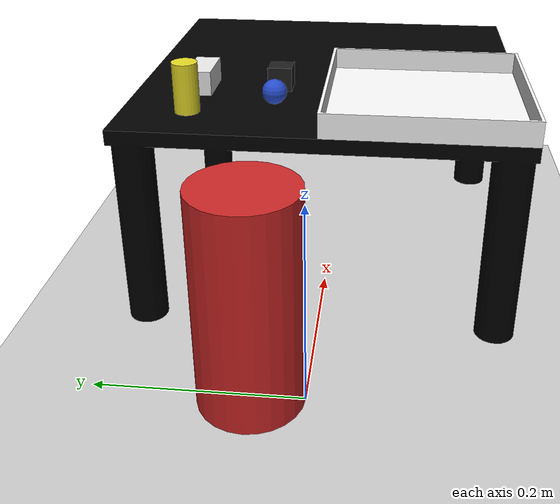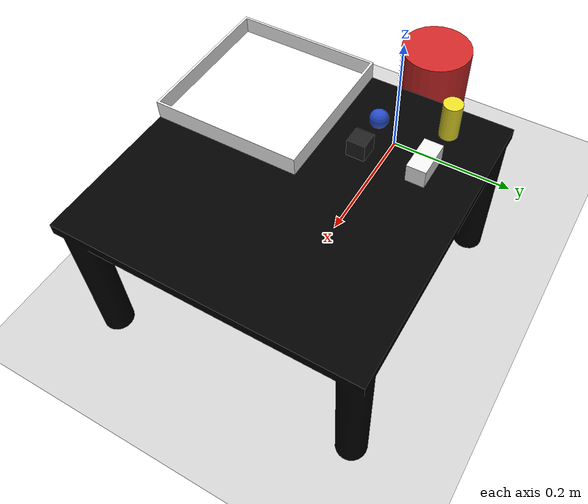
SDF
<sdf version="1.7">
 <world name="default">
  <light name="sun" type="directional">
   <pose>0 0 10 0 -0 0</pose>
   <diffuse>0.8 0.8 0.8 1</diffuse>
   <specular>0.2 0.2 0.2 1</specular>
   <attenuation>
    <range>1000</range>
    <constant>0.9</constant>
    <linear>0.01</linear>
    <quadratic>0.001</quadratic>
   </attenuation>
   <direction>-0.5 0.1 -0.9</direction>
   <spot><inner_angle>0</inner_angle><outer_angle>0</outer_angle><falloff>0</falloff></spot>
  </light>
  <model name="ground_plane">
   <static>1</static>
   <link name="link">
    <collision name="collision">
     <geometry><plane><normal>0 0 1</normal><size>100 100</size></plane></geometry>
     <surface><friction><ode><mu>100</mu><mu2>50</mu2></ode></friction></surface>
    </collision>
    <visual name="visual">
     <cast_shadows>0</cast_shadows>
     <geometry><plane><normal>0 0 1</normal><size>100 100</size></plane></geometry>
     <material>
      <script><uri>file://media/materials/scripts/gazebo.material</uri><name>Gazebo/Grey</name></script>
     </material>
    </visual>
   </link>
  </model>
  <gravity>0 0 -9.8</gravity>
  <magnetic_field>6e-06 2.3e-05 -4.2e-05</magnetic_field>
  <atmosphere type="adiabatic"/>
  <physics type="ode">
   <max_step_size>0.001</max_step_size>
   <real_time_factor>1</real_time_factor>
   <real_time_update_rate>1000</real_time_update_rate>
  </physics>
  <scene><ambient>0.4 0.4 0.4 1</ambient><background>0.7 0.7 0.7 1</background><shadows>1</shadows></scene>
  <spherical_coordinates>
   <surface_model>EARTH_WGS84</surface_model>
   <latitude_deg>0</latitude_deg>
   <longitude_deg>0</longitude_deg>
   <elevation>0</elevation>
   <heading_deg>0</heading_deg>
  </spherical_coordinates>
  <model name="orange_0">
   <link name="link">
    <inertial>
     <mass>0.0565</mass>
     <inertia>
      <ixx>2.35417e-05</ixx>
      <ixy>0</ixy>
      <ixz>0</ixz>
      <iyy>2.35417e-05</iyy>
      <iyz>0</iyz>
      <izz>2.35417e-05</izz>
     </inertia>
    </inertial>
    <collision name="collision">
     <pose>0 0.005 0 0 -0 0</pose>
     <geometry><box><size>0.2 0.01 0.2</size></box></geometry>
     <surface>
      <contact>
       <poissons_ratio>0.347</poissons_ratio>
       <elastic_modulus>8.8e+09</elastic_modulus>
       <ode><kp>100000</kp><kd>1</kd><max_vel>1</max_vel><min_depth>0.001</min_depth></ode>
      </contact>
      <friction>
       <torsional>
        <coefficient>1</coefficient>
        <use_patch_radius>0</use_patch_radius>
        <surface_radius>0.05</surface_radius>
       </torsional>
      </friction>
     </surface>
    </collision>
    <visual name="visual"><geometry><mesh><uri>model://changhei/meshes/1.dae</uri></mesh></geometry></visual>
   </link>
   <static>1</static>
   <pose>0.2 -0.1 0.215 1.5708 -0 0</pose>
  </model>
  <model name="unit_sphere_0.025">
   <link name="link">
    <inertial>
     <mass>8e-05</mass>
     <inertia>
      <ixx>0.0219651</ixx>
      <ixy>0</ixy>
      <ixz>0</ixz>
      <iyy>0.0219651</iyy>
      <iyz>0</iyz>
      <izz>0.0219651</izz>
     </inertia>
    </inertial>
    <visual name="visual">
     <geometry><sphere><radius>0.0125</radius></sphere></geometry>
     <material>
      <script><name>Gazebo/Blue</name><uri>file://media/materials/scripts/gazebo.material</uri></script>
      <shader type="pixel"><normal_map>__default__</normal_map></shader>
      <ambient>0 0 1 1</ambient>
      <diffuse>0 0 1 1</diffuse>
      <specular>0 0 1 1</specular>
      <emissive>0 0 0 1</emissive>
     </material>
    </visual>
    <collision name="collision">
     <geometry><box><size>0.025 0.025 0.025</size></box></geometry>
     <surface>
      <friction>
       <ode><mu>1</mu><mu2>1</mu2><fdir1>0 0 0</fdir1><slip1>0</slip1><slip2>0</slip2></ode>
       <torsional>
        <coefficient>1</coefficient>
        <patch_radius>0</patch_radius>
        <surface_radius>0</surface_radius>
        <use_patch_radius>1</use_patch_radius>
        <ode><slip>0</slip></ode>
       </torsional>
      </friction>
      <bounce><restitution_coefficient>0</restitution_coefficient><threshold>1e+06</threshold></bounce>
      <contact>
       <collide_without_contact>0</collide_without_contact>
       <collide_without_contact_bitmask>1</collide_without_contact_bitmask>
       <collide_bitmask>1</collide_bitmask>
       <ode>
        <soft_cfm>0</soft_cfm>
        <soft_erp>0.2</soft_erp>
        <kp>1e+13</kp>
        <kd>1</kd>
        <max_vel>0.01</max_vel>
        <min_depth>0</min_depth>
       </ode>
       <bullet>
        <split_impulse>1</split_impulse>
        <split_impulse_penetration_threshold>-0.01</split_impulse_penetration_threshold>
        <soft_cfm>0</soft_cfm>
        <soft_erp>0.2</soft_erp>
        <kp>1e+13</kp>
        <kd>1</kd>
       </bullet>
      </contact>
     </surface>
    </collision>
   </link>
   <static>0</static>
   <pose>0.18 0.05 0.23 -2e-06 -1e-06 0</pose>
  </model>
  <model name="box_2_5cm_5cm_2_5cm">
   <link name="link">
    <inertial>
     <mass>1</mass>
     <inertia>
      <ixx>0.166667</ixx>
      <ixy>0</ixy>
      <ixz>0</ixz>
      <iyy>0.166667</iyy>
      <iyz>0</iyz>
      <izz>0.166667</izz>
     </inertia>
    </inertial>
    <visual name="visual">
     <geometry><box><size>0.025 0.05 0.025</size></box></geometry>
     <material>
      <script><name>Gazebo/White</name><uri>file://media/materials/scripts/gazebo.material</uri></script>
      <shader type="pixel"><normal_map>__default__</normal_map></shader>
      <ambient>1 1 1 1</ambient>
      <diffuse>1 1 1 1</diffuse>
      <specular>1 1 1 1</specular>
      <emissive>0 0 0 1</emissive>
     </material>
    </visual>
    <collision name="collision">
     <geometry><box><size>0.025 0.05 0.025</size></box></geometry>
     <surface>
      <friction>
       <ode><mu>1</mu><mu2>1</mu2><fdir1>0 0 0</fdir1><slip1>0</slip1><slip2>0</slip2></ode>
       <torsional>
        <coefficient>1</coefficient>
        <patch_radius>0</patch_radius>
        <surface_radius>0</surface_radius>
        <use_patch_radius>1</use_patch_radius>
        <ode><slip>0</slip></ode>
       </torsional>
      </friction>
      <bounce><restitution_coefficient>0</restitution_coefficient><threshold>1e+06</threshold></bounce>
      <contact>
       <collide_without_contact>0</collide_without_contact>
       <collide_without_contact_bitmask>1</collide_without_contact_bitmask>
       <collide_bitmask>1</collide_bitmask>
       <ode>
        <soft_cfm>0</soft_cfm>
        <soft_erp>0.2</soft_erp>
        <kp>1e+13</kp>
        <kd>1</kd>
        <max_vel>0.01</max_vel>
        <min_depth>0</min_depth>
       </ode>
       <bullet>
        <split_impulse>1</split_impulse>
        <split_impulse_penetration_threshold>-0.01</split_impulse_penetration_threshold>
        <soft_cfm>0</soft_cfm>
        <soft_erp>0.2</soft_erp>
        <kp>1e+13</kp>
        <kd>1</kd>
       </bullet>
      </contact>
     </surface>
    </collision>
   </link>
   <static>0</static>
   <pose>0.22 0.13 0.229941 -0 6e-06 1.5708</pose>
  </model>
  <model name="unit_cylinder_5cm_21cm">
   <link name="link">
    <inertial>
     <mass>1</mass>
     <inertia><ixx>0.145833</ixx><ixy>0</ixy><ixz>0</ixz><iyy>0.145833</iyy><iyz>0</iyz><izz>0.125</izz></inertia>
    </inertial>
    <visual name="visual">
     <geometry><cylinder><radius>0.05</radius><length>0.214</length></cylinder></geometry>
     <material>
      <script><name>Gazebo/Red</name><uri>file://media/materials/scripts/gazebo.material</uri></script>
     </material>
    </visual>
    <collision name="collision">
     <geometry><cylinder><radius>0.05</radius><length>0.214</length></cylinder></geometry>
     <surface>
      <friction>
       <ode><mu>1</mu><mu2>1</mu2><fdir1>0 0 0</fdir1><slip1>0</slip1><slip2>0</slip2></ode>
       <torsional>
        <coefficient>1</coefficient>
        <patch_radius>0</patch_radius>
        <surface_radius>0</surface_radius>
        <use_patch_radius>1</use_patch_radius>
        <ode><slip>0</slip></ode>
       </torsional>
      </friction>
      <bounce><restitution_coefficient>0</restitution_coefficient><threshold>1e+06</threshold></bounce>
      <contact>
       <collide_without_contact>0</collide_without_contact>
       <collide_without_contact_bitmask>1</collide_without_contact_bitmask>
       <collide_bitmask>1</collide_bitmask>
       <ode>
        <soft_cfm>0</soft_cfm>
        <soft_erp>0.2</soft_erp>
        <kp>1e+13</kp>
        <kd>1</kd>
        <max_vel>0.01</max_vel>
        <min_depth>0</min_depth>
       </ode>
       <bullet>
        <split_impulse>1</split_impulse>
        <split_impulse_penetration_threshold>-0.01</split_impulse_penetration_threshold>
        <soft_cfm>0</soft_cfm>
        <soft_erp>0.2</soft_erp>
        <kp>1e+13</kp>
        <kd>1</kd>
       </bullet>
      </contact>
     </surface>
    </collision>
   </link>
   <static>0</static>
   <pose>0 0.050001 0.106999 0 -0 7.8e-05</pose>
  </model>
  <model name="cylinder_2_5x5cm">
   <link name="link">
    <inertial>
     <mass>1</mass>
     <inertia><ixx>0.145833</ixx><ixy>0</ixy><ixz>0</ixz><iyy>0.145833</iyy><iyz>0</iyz><izz>0.125</izz></inertia>
    </inertial>
    <visual name="visual">
     <geometry><cylinder><radius>0.0125</radius><length>0.05</length></cylinder></geometry>
     <material>
      <script><name>Gazebo/Yellow</name><uri>file://media/materials/scripts/gazebo.material</uri></script>
      <shader type="pixel"><normal_map>__default__</normal_map></shader>
      <ambient>1 1 0 1</ambient>
      <diffuse>1 1 0 1</diffuse>
      <specular>1 1 0 1</specular>
      <emissive>0 0 0 1</emissive>
     </material>
    </visual>
    <collision name="collision">
     <geometry><cylinder><radius>0.0125</radius><length>0.05</length></cylinder></geometry>
     <surface>
      <friction>
       <ode><mu>1</mu><mu2>1</mu2><fdir1>0 0 0</fdir1><slip1>0</slip1><slip2>0</slip2></ode>
       <torsional>
        <coefficient>1</coefficient>
        <patch_radius>0</patch_radius>
        <surface_radius>0</surface_radius>
        <use_patch_radius>1</use_patch_radius>
        <ode><slip>0</slip></ode>
       </torsional>
      </friction>
      <bounce><restitution_coefficient>0</restitution_coefficient><threshold>1e+06</threshold></bounce>
      <contact>
       <collide_without_contact>0</collide_without_contact>
       <collide_without_contact_bitmask>1</collide_without_contact_bitmask>
       <collide_bitmask>1</collide_bitmask>
       <ode>
        <soft_cfm>0</soft_cfm>
        <soft_erp>0.2</soft_erp>
        <kp>1e+13</kp>
        <kd>1</kd>
        <max_vel>0.01</max_vel>
        <min_depth>0</min_depth>
       </ode>
       <bullet>
        <split_impulse>1</split_impulse>
        <split_impulse_penetration_threshold>-0.01</split_impulse_penetration_threshold>
        <soft_cfm>0</soft_cfm>
        <soft_erp>0.2</soft_erp>
        <kp>1e+13</kp>
        <kd>1</kd>
       </bullet>
      </contact>
     </surface>
    </collision>
   </link>
   <static>0</static>
   <pose>0.15 0.13157 0.242488 -0.000254 0 0</pose>
  </model>
  <model name="wood_cube_2_5cm">
   <link name="link">
    <pose>-0 -0 0.0125 0 -0 0</pose>
    <inertial>
     <mass>0.0073</mass>
     <inertia><ixx>7.6e-07</ixx><ixy>0</ixy><ixz>0</ixz><iyy>7.6e-07</iyy><iyz>0</iyz><izz>7.6e-07</izz></inertia>
    </inertial>
    <visual name="visual">
     <geometry><box><size>0.025 0.025 0.025</size></box></geometry>
     <material>
      <script><uri>file://media/materials/scripts/gazebo.material</uri><name>Gazebo/Black</name></script>
      <shader type="pixel"><normal_map>__default__</normal_map></shader>
      <ambient>0 0 0 1</ambient>
      <diffuse>0 0 0 1</diffuse>
      <specular>0 0 0 1</specular>
      <emissive>0 0 0 1</emissive>
     </material>
    </visual>
    <collision name="collision">
     <geometry><box><size>0.025 0.025 0.025</size></box></geometry>
     <surface>
      <friction>
       <ode><mu>1</mu><mu2>1</mu2><fdir1>0 0 0</fdir1><slip1>0</slip1><slip2>0</slip2></ode>
       <torsional>
        <coefficient>1</coefficient>
        <patch_radius>0</patch_radius>
        <surface_radius>0.01</surface_radius>
        <use_patch_radius>0</use_patch_radius>
        <ode><slip>0</slip></ode>
       </torsional>
      </friction>
      <bounce><restitution_coefficient>0</restitution_coefficient><threshold>1e+06</threshold></bounce>
      <contact>
       <collide_without_contact>0</collide_without_contact>
       <collide_without_contact_bitmask>1</collide_without_contact_bitmask>
       <collide_bitmask>1</collide_bitmask>
       <ode>
        <soft_cfm>0</soft_cfm>
        <soft_erp>0.2</soft_erp>
        <kp>100000</kp>
        <kd>100</kd>
        <max_vel>100</max_vel>
        <min_depth>0.001</min_depth>
       </ode>
       <bullet>
        <split_impulse>1</split_impulse>
        <split_impulse_penetration_threshold>-0.01</split_impulse_penetration_threshold>
        <soft_cfm>0</soft_cfm>
        <soft_erp>0.2</soft_erp>
        <kp>100000</kp>
        <kd>100</kd>
       </bullet>
      </contact>
     </surface>
    </collision>
   </link>
   <static>0</static>
   <pose>0.23 0.05 0.216637 -0.005558 4.9e-05 1e-06</pose>
  </model>
  <model name="orange">
   <link name="link">
    <inertial>
     <mass>0.0565</mass>
     <inertia>
      <ixx>2.354e-05</ixx>
      <ixy>0</ixy>
      <ixz>0</ixz>
      <iyy>2.354e-05</iyy>
      <iyz>0</iyz>
      <izz>2.354e-05</izz>
     </inertia>
    </inertial>
    <visual name="visual">
     <geometry><mesh><uri>model://zhuozi/meshes/1.dae</uri></mesh></geometry>
     <material>
      <shader type="pixel"><normal_map>__default__</normal_map></shader>
      <script><name>ModelPreview_1::link::visual_MATERIAL_</name><uri>__default__</uri></script>
      <ambient>1 1 0 0</ambient>
      <diffuse>0 0 0 1</diffuse>
      <specular>0 0 0 1</specular>
      <emissive>0 0 0 1</emissive>
     </material>
    </visual>
    <collision name="collision">
     <pose>0 0.105 0 0 -0 0</pose>
     <geometry><box><size>0.4 0.215 0.4</size></box></geometry>
     <surface>
      <friction>
       <ode><mu>1</mu><mu2>1</mu2><fdir1>0 0 0</fdir1><slip1>0</slip1><slip2>0</slip2></ode>
       <torsional>
        <coefficient>1</coefficient>
        <patch_radius>0</patch_radius>
        <surface_radius>0.05</surface_radius>
        <use_patch_radius>0</use_patch_radius>
        <ode><slip>0</slip></ode>
       </torsional>
      </friction>
      <bounce><restitution_coefficient>0</restitution_coefficient><threshold>1e+06</threshold></bounce>
      <contact>
       <collide_without_contact>0</collide_without_contact>
       <collide_without_contact_bitmask>1</collide_without_contact_bitmask>
       <collide_bitmask>1</collide_bitmask>
       <ode>
        <soft_cfm>0</soft_cfm>
        <soft_erp>0.2</soft_erp>
        <kp>100000</kp>
        <kd>1</kd>
        <max_vel>1</max_vel>
        <min_depth>0.001</min_depth>
       </ode>
       <bullet>
        <split_impulse>1</split_impulse>
        <split_impulse_penetration_threshold>-0.01</split_impulse_penetration_threshold>
        <soft_cfm>0</soft_cfm>
        <soft_erp>0.2</soft_erp>
        <kp>100000</kp>
        <kd>1</kd>
       </bullet>
      </contact>
     </surface>
    </collision>
   </link>
   <static>1</static>
   <pose>0.3 0 0.215 -1.5708 0 0</pose>
  </model>
 </world>
</sdf>
